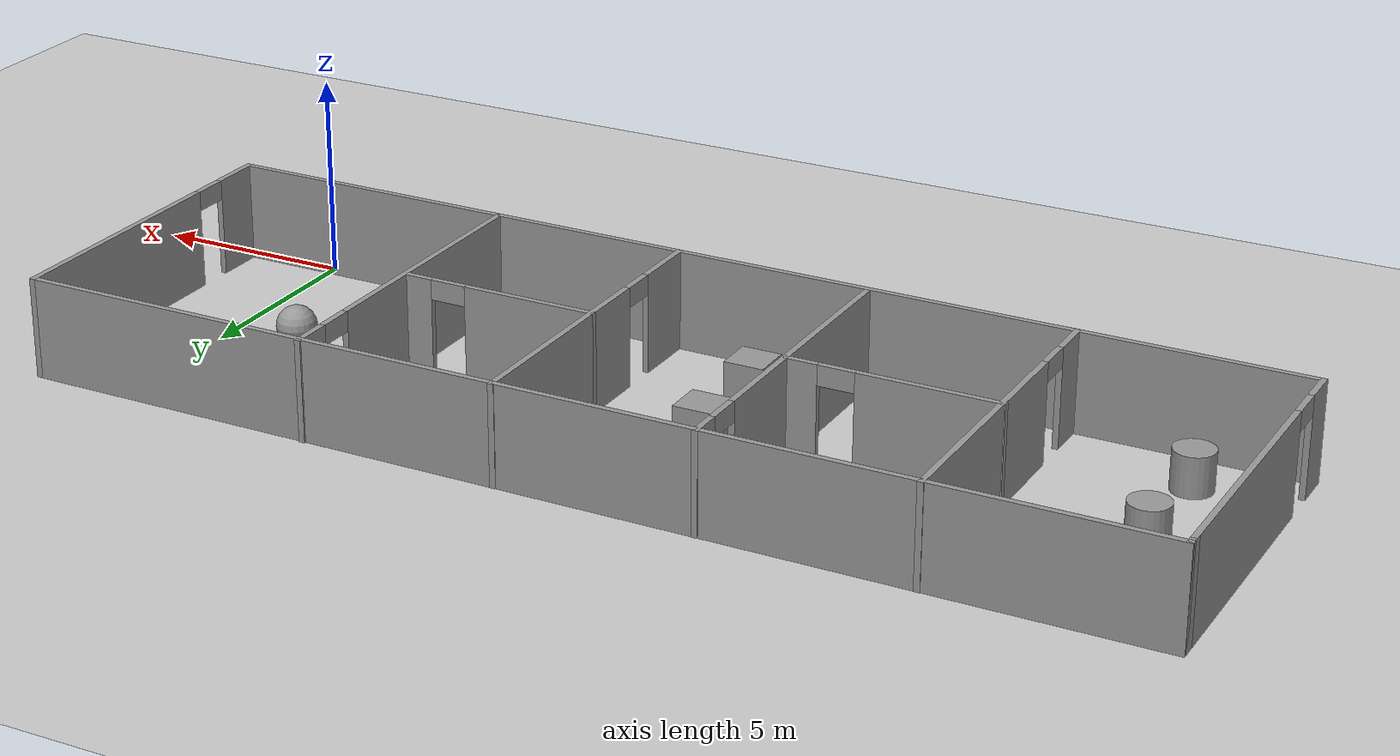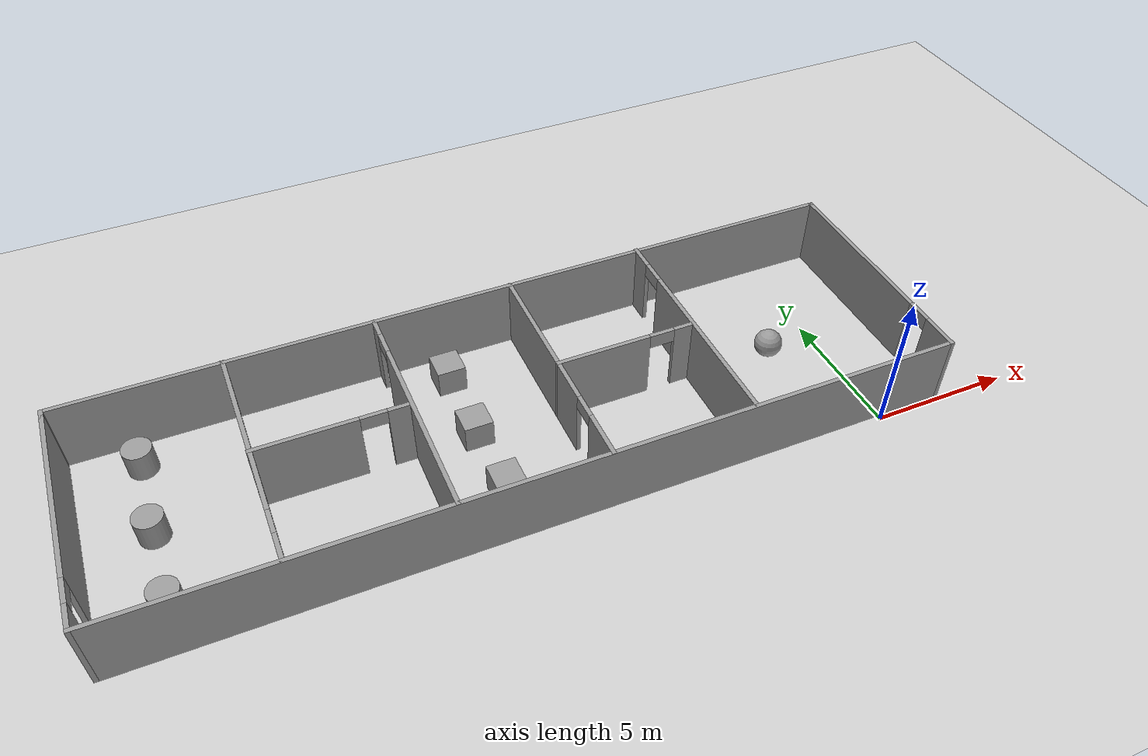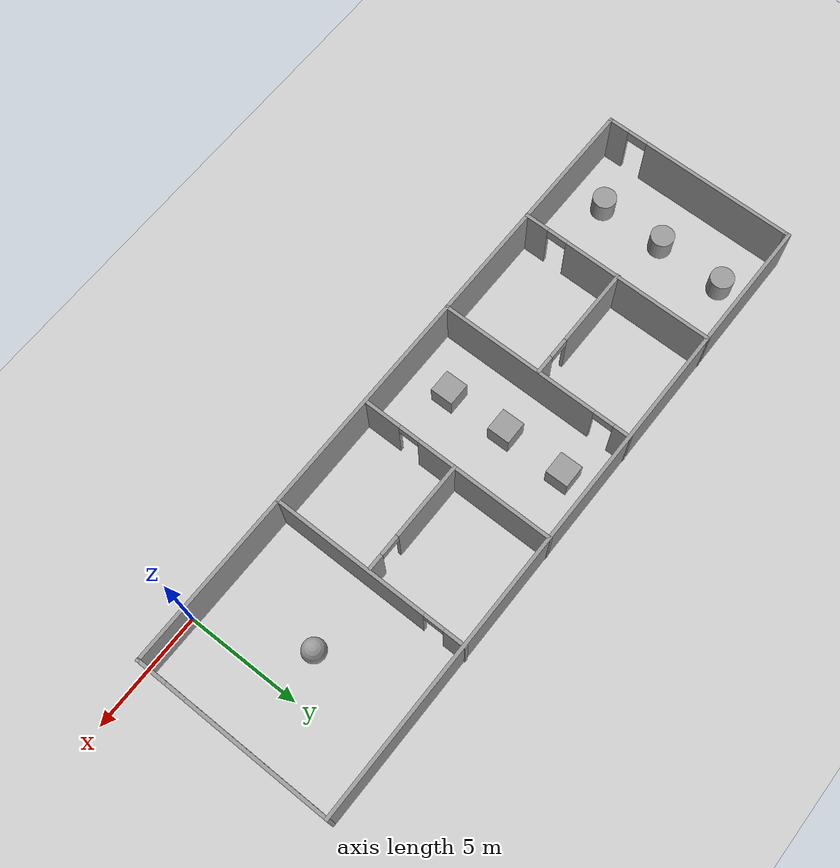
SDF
<sdf version="1.6">
 <world name="default">
  <light name="sun" type="directional">
   <pose>0 0 10 0 -0 0</pose>
   <diffuse>0.8 0.8 0.8 1</diffuse>
   <specular>0.1 0.1 0.1 1</specular>
   <attenuation>
    <range>1000</range>
    <constant>0.9</constant>
    <linear>0.01</linear>
    <quadratic>0.001</quadratic>
   </attenuation>
   <direction>-0.5 0.5 -1</direction>
  </light>
  <model name="ground_plane">
   <static>1</static>
   <link name="link">
    <collision name="collision">
     <geometry><plane><normal>0 0 1</normal><size>100 100</size></plane></geometry>
     <surface><friction><ode><mu>100</mu><mu2>50</mu2></ode></friction></surface>
    </collision>
    <visual name="visual">
     <cast_shadows>0</cast_shadows>
     <geometry><plane><normal>0 0 1</normal><size>100 100</size></plane></geometry>
     <material>
      <script><uri>file://media/materials/scripts/gazebo.material</uri><name>Gazebo/Grey</name></script>
     </material>
    </visual>
   </link>
  </model>
  <gravity>0 0 -9.8</gravity>
  <magnetic_field>6e-06 2.3e-05 -4.2e-05</magnetic_field>
  <atmosphere type="adiabatic"/>
  <physics name="default_physics" default="0" type="ode">
   <max_step_size>0.001</max_step_size>
   <real_time_factor>1</real_time_factor>
   <real_time_update_rate>1000</real_time_update_rate>
  </physics>
  <scene><ambient>0.4 0.4 0.4 1</ambient><background>0.7 0.7 0.7 1</background><shadows>1</shadows></scene>
  <spherical_coordinates>
   <surface_model>EARTH_WGS84</surface_model>
   <latitude_deg>0</latitude_deg>
   <longitude_deg>0</longitude_deg>
   <elevation>0</elevation>
   <heading_deg>0</heading_deg>
  </spherical_coordinates>
  <model name="house1">
   <pose>-11.6487 4.61276 0 0 0 -0.006803</pose>
   <link name="Wall_14">
    <pose>-3.30352 -0.005299 0 0 0 -1.5708</pose>
    <visual name="Wall_14_Visual_0">
     <pose>-3.97729 0 1.25 0 -0 0</pose>
     <geometry><box><size>0.795409 0.15 2.5</size></box></geometry>
     <material>
      <script><uri>file://media/materials/scripts/gazebo.material</uri><name>Gazebo/Grey</name></script>
      <ambient>1 1 1 1</ambient>
     </material>
    </visual>
    <collision name="Wall_14_Collision_0">
     <geometry><box><size>0.795409 0.15 2.5</size></box></geometry>
     <pose>-3.97729 0 1.25 0 -0 0</pose>
    </collision>
    <visual name="Wall_14_Visual_1">
     <pose>0.847705 0 1.25 0 -0 0</pose>
     <geometry><box><size>7.05459 0.15 2.5</size></box></geometry>
     <material>
      <script><uri>file://media/materials/scripts/gazebo.material</uri><name>Gazebo/Grey</name></script>
      <ambient>1 1 1 1</ambient>
     </material>
    </visual>
    <collision name="Wall_14_Collision_1">
     <geometry><box><size>7.05459 0.15 2.5</size></box></geometry>
     <pose>0.847705 0 1.25 0 -0 0</pose>
    </collision>
    <visual name="Wall_14_Visual_2">
     <pose>-3.12959 0 2.25 0 -0 0</pose>
     <geometry><box><size>0.9 0.15 0.5</size></box></geometry>
     <material>
      <script><uri>file://media/materials/scripts/gazebo.material</uri><name>Gazebo/Grey</name></script>
      <ambient>1 1 1 1</ambient>
     </material>
    </visual>
    <collision name="Wall_14_Collision_2">
     <geometry><box><size>0.9 0.15 0.5</size></box></geometry>
     <pose>-3.12959 0 2.25 0 -0 0</pose>
    </collision>
   </link>
   <link name="Wall_16">
    <pose>1.64412 -0.005299 0 0 0 -1.5708</pose>
    <visual name="Wall_16_Visual_0">
     <pose>-1.31728 0 1.25 0 -0 0</pose>
     <geometry><box><size>6.11545 0.15 2.5</size></box></geometry>
     <material>
      <script><uri>file://media/materials/scripts/gazebo.material</uri><name>Gazebo/Grey</name></script>
      <ambient>1 1 1 1</ambient>
     </material>
    </visual>
    <collision name="Wall_16_Collision_0">
     <geometry><box><size>6.11545 0.15 2.5</size></box></geometry>
     <pose>-1.31728 0 1.25 0 -0 0</pose>
    </collision>
    <visual name="Wall_16_Visual_1">
     <pose>3.50772 0 1.25 0 -0 0</pose>
     <geometry><box><size>1.73455 0.15 2.5</size></box></geometry>
     <material>
      <script><uri>file://media/materials/scripts/gazebo.material</uri><name>Gazebo/Grey</name></script>
      <ambient>1 1 1 1</ambient>
     </material>
    </visual>
    <collision name="Wall_16_Collision_1">
     <geometry><box><size>1.73455 0.15 2.5</size></box></geometry>
     <pose>3.50772 0 1.25 0 -0 0</pose>
    </collision>
    <visual name="Wall_16_Visual_2">
     <pose>2.19045 0 2.25 0 -0 0</pose>
     <geometry><box><size>0.9 0.15 0.5</size></box></geometry>
     <material>
      <script><uri>file://media/materials/scripts/gazebo.material</uri><name>Gazebo/Grey</name></script>
      <ambient>1 1 1 1</ambient>
     </material>
    </visual>
    <collision name="Wall_16_Collision_2">
     <geometry><box><size>0.9 0.15 0.5</size></box></geometry>
     <pose>2.19045 0 2.25 0 -0 0</pose>
    </collision>
   </link>
   <link name="Wall_2">
    <pose>-14.05 -0.146301 0 0 0 -1.5708</pose>
    <visual name="Wall_2_Visual_0">
     <pose>-0.939574 0 1.25 0 -0 0</pose>
     <geometry><box><size>6.62085 0.15 2.5</size></box></geometry>
     <material>
      <script><uri>file://media/materials/scripts/gazebo.material</uri><name>Gazebo/Grey</name></script>
      <ambient>1 1 1 1</ambient>
     </material>
    </visual>
    <collision name="Wall_2_Collision_0">
     <geometry><box><size>6.62085 0.15 2.5</size></box></geometry>
     <pose>-0.939574 0 1.25 0 -0 0</pose>
    </collision>
    <visual name="Wall_2_Visual_1">
     <pose>3.76043 0 1.25 0 -0 0</pose>
     <geometry><box><size>0.979148 0.15 2.5</size></box></geometry>
     <material>
      <script><uri>file://media/materials/scripts/gazebo.material</uri><name>Gazebo/Grey</name></script>
      <ambient>1 1 1 1</ambient>
     </material>
    </visual>
    <collision name="Wall_2_Collision_1">
     <geometry><box><size>0.979148 0.15 2.5</size></box></geometry>
     <pose>3.76043 0 1.25 0 -0 0</pose>
    </collision>
    <visual name="Wall_2_Visual_2">
     <pose>2.82085 0 2.25 0 -0 0</pose>
     <geometry><box><size>0.9 0.15 0.5</size></box></geometry>
     <material>
      <script><uri>file://media/materials/scripts/gazebo.material</uri><name>Gazebo/Grey</name></script>
      <ambient>1 1 1 1</ambient>
     </material>
    </visual>
    <collision name="Wall_2_Collision_2">
     <geometry><box><size>0.9 0.15 0.5</size></box></geometry>
     <pose>2.82085 0 2.25 0 -0 0</pose>
    </collision>
   </link>
   <link name="Wall_20">
    <pose>6.61835 0.021301 0 0 0 -1.5708</pose>
    <visual name="Wall_20_Visual_0">
     <pose>-3.87089 0 1.25 0 -0 0</pose>
     <geometry><box><size>1.00821 0.15 2.5</size></box></geometry>
     <material>
      <script><uri>file://media/materials/scripts/gazebo.material</uri><name>Gazebo/Grey</name></script>
      <ambient>1 1 1 1</ambient>
     </material>
    </visual>
    <collision name="Wall_20_Collision_0">
     <geometry><box><size>1.00821 0.15 2.5</size></box></geometry>
     <pose>-3.87089 0 1.25 0 -0 0</pose>
    </collision>
    <visual name="Wall_20_Visual_1">
     <pose>0.954105 0 1.25 0 -0 0</pose>
     <geometry><box><size>6.84179 0.15 2.5</size></box></geometry>
     <material>
      <script><uri>file://media/materials/scripts/gazebo.material</uri><name>Gazebo/Grey</name></script>
      <ambient>1 1 1 1</ambient>
     </material>
    </visual>
    <collision name="Wall_20_Collision_1">
     <geometry><box><size>6.84179 0.15 2.5</size></box></geometry>
     <pose>0.954105 0 1.25 0 -0 0</pose>
    </collision>
    <visual name="Wall_20_Visual_2">
     <pose>-2.91679 0 2.25 0 -0 0</pose>
     <geometry><box><size>0.9 0.15 0.5</size></box></geometry>
     <material>
      <script><uri>file://media/materials/scripts/gazebo.material</uri><name>Gazebo/Grey</name></script>
      <ambient>1 1 1 1</ambient>
     </material>
    </visual>
    <collision name="Wall_20_Collision_2">
     <geometry><box><size>0.9 0.15 0.5</size></box></geometry>
     <pose>-2.91679 0 2.25 0 -0 0</pose>
    </collision>
   </link>
   <link name="Wall_22">
    <pose>-5.88736 0.065269 0 0 -0 0</pose>
    <visual name="Wall_22_Visual_0">
     <pose>-0.870685 0 1.25 0 -0 0</pose>
     <geometry><box><size>3.50863 0.15 2.5</size></box></geometry>
     <material>
      <script><uri>file://media/materials/scripts/gazebo.material</uri><name>Gazebo/Grey</name></script>
      <ambient>1 1 1 1</ambient>
     </material>
    </visual>
    <collision name="Wall_22_Collision_0">
     <geometry><box><size>3.50863 0.15 2.5</size></box></geometry>
     <pose>-0.870685 0 1.25 0 -0 0</pose>
    </collision>
    <visual name="Wall_22_Visual_1">
     <pose>2.20431 0 1.25 0 -0 0</pose>
     <geometry><box><size>0.841371 0.15 2.5</size></box></geometry>
     <material>
      <script><uri>file://media/materials/scripts/gazebo.material</uri><name>Gazebo/Grey</name></script>
      <ambient>1 1 1 1</ambient>
     </material>
    </visual>
    <collision name="Wall_22_Collision_1">
     <geometry><box><size>0.841371 0.15 2.5</size></box></geometry>
     <pose>2.20431 0 1.25 0 -0 0</pose>
    </collision>
    <visual name="Wall_22_Visual_2">
     <pose>1.33363 0 2.25 0 -0 0</pose>
     <geometry><box><size>0.9 0.15 0.5</size></box></geometry>
     <material>
      <script><uri>file://media/materials/scripts/gazebo.material</uri><name>Gazebo/Grey</name></script>
      <ambient>1 1 1 1</ambient>
     </material>
    </visual>
    <collision name="Wall_22_Collision_2">
     <geometry><box><size>0.9 0.15 0.5</size></box></geometry>
     <pose>1.33363 0 2.25 0 -0 0</pose>
    </collision>
   </link>
   <link name="Wall_24">
    <pose>4.06912 -0.067732 0 0 -0 0</pose>
    <visual name="Wall_24_Visual_0">
     <pose>-0.798886 0 1.25 0 -0 0</pose>
     <geometry><box><size>3.40223 0.15 2.5</size></box></geometry>
     <material>
      <script><uri>file://media/materials/scripts/gazebo.material</uri><name>Gazebo/Grey</name></script>
      <ambient>1 1 1 1</ambient>
     </material>
    </visual>
    <collision name="Wall_24_Collision_0">
     <geometry><box><size>3.40223 0.15 2.5</size></box></geometry>
     <pose>-0.798886 0 1.25 0 -0 0</pose>
    </collision>
    <visual name="Wall_24_Visual_1">
     <pose>2.15111 0 1.25 0 -0 0</pose>
     <geometry><box><size>0.697772 0.15 2.5</size></box></geometry>
     <material>
      <script><uri>file://media/materials/scripts/gazebo.material</uri><name>Gazebo/Grey</name></script>
      <ambient>1 1 1 1</ambient>
     </material>
    </visual>
    <collision name="Wall_24_Collision_1">
     <geometry><box><size>0.697772 0.15 2.5</size></box></geometry>
     <pose>2.15111 0 1.25 0 -0 0</pose>
    </collision>
    <visual name="Wall_24_Visual_2">
     <pose>1.35223 0 2.25 0 -0 0</pose>
     <geometry><box><size>0.9 0.15 0.5</size></box></geometry>
     <material>
      <script><uri>file://media/materials/scripts/gazebo.material</uri><name>Gazebo/Grey</name></script>
      <ambient>1 1 1 1</ambient>
     </material>
    </visual>
    <collision name="Wall_24_Collision_2">
     <geometry><box><size>0.9 0.15 0.5</size></box></geometry>
     <pose>1.35223 0 2.25 0 -0 0</pose>
    </collision>
   </link>
   <link name="Wall_3">
    <collision name="Wall_3_Collision">
     <geometry><box><size>28.25 0.15 2.5</size></box></geometry>
     <pose>0 0 1.25 0 -0 0</pose>
    </collision>
    <visual name="Wall_3_Visual">
     <pose>0 0 1.25 0 -0 0</pose>
     <geometry><box><size>28.25 0.15 2.5</size></box></geometry>
     <material>
      <script><uri>file://media/materials/scripts/gazebo.material</uri><name>Gazebo/Grey</name></script>
      <ambient>1 1 1 1</ambient>
     </material>
    </visual>
    <pose>0 -4.3213 0 0 -0 0</pose>
   </link>
   <link name="Wall_4">
    <pose>14.05 -0.021301 0 0 -0 1.5708</pose>
    <visual name="Wall_4_Visual_0">
     <pose>-3.68593 0 1.25 0 -0 0</pose>
     <geometry><box><size>1.37815 0.15 2.5</size></box></geometry>
     <material>
      <script><uri>file://media/materials/scripts/gazebo.material</uri><name>Gazebo/Grey</name></script>
      <ambient>1 1 1 1</ambient>
     </material>
    </visual>
    <collision name="Wall_4_Collision_0">
     <geometry><box><size>1.37815 0.15 2.5</size></box></geometry>
     <pose>-3.68593 0 1.25 0 -0 0</pose>
    </collision>
    <visual name="Wall_4_Visual_1">
     <pose>1.13908 0 1.25 0 -0 0</pose>
     <geometry><box><size>6.47185 0.15 2.5</size></box></geometry>
     <material>
      <script><uri>file://media/materials/scripts/gazebo.material</uri><name>Gazebo/Grey</name></script>
      <ambient>1 1 1 1</ambient>
     </material>
    </visual>
    <collision name="Wall_4_Collision_1">
     <geometry><box><size>6.47185 0.15 2.5</size></box></geometry>
     <pose>1.13908 0 1.25 0 -0 0</pose>
    </collision>
    <visual name="Wall_4_Visual_2">
     <pose>-2.54685 0 2.25 0 -0 0</pose>
     <geometry><box><size>0.9 0.15 0.5</size></box></geometry>
     <material>
      <script><uri>file://media/materials/scripts/gazebo.material</uri><name>Gazebo/Grey</name></script>
      <ambient>1 1 1 1</ambient>
     </material>
    </visual>
    <collision name="Wall_4_Collision_2">
     <geometry><box><size>0.9 0.15 0.5</size></box></geometry>
     <pose>-2.54685 0 2.25 0 -0 0</pose>
    </collision>
   </link>
   <link name="Wall_5">
    <collision name="Wall_5_Collision">
     <geometry><box><size>28.25 0.15 2.5</size></box></geometry>
     <pose>0 0 1.25 0 -0 0</pose>
    </collision>
    <visual name="Wall_5_Visual">
     <pose>0 0 1.25 0 -0 0</pose>
     <geometry><box><size>28.25 0.15 2.5</size></box></geometry>
     <material>
      <script><uri>file://media/materials/scripts/gazebo.material</uri><name>Gazebo/Grey</name></script>
      <ambient>1 1 1 1</ambient>
     </material>
    </visual>
    <pose>0 4.2787 0 0 -0 3.14159</pose>
   </link>
   <link name="Wall_6">
    <collision name="Wall_6_Collision">
     <geometry><box><size>0.4 0.15 2.5</size></box></geometry>
     <pose>0 0 1.25 0 -0 0</pose>
    </collision>
    <visual name="Wall_6_Visual">
     <pose>0 0 1.25 0 -0 0</pose>
     <geometry><box><size>0.4 0.15 2.5</size></box></geometry>
     <material>
      <script><uri>file://media/materials/scripts/gazebo.material</uri><name>Gazebo/Grey</name></script>
      <ambient>1 1 1 1</ambient>
     </material>
    </visual>
    <pose>-14.05 4.1537 0 0 0 -1.5708</pose>
   </link>
   <link name="Wall_8">
    <pose>-8.41076 -0.005299 0 0 0 -1.5708</pose>
    <visual name="Wall_8_Visual_0">
     <pose>-0.998073 0 1.25 0 -0 0</pose>
     <geometry><box><size>6.75385 0.15 2.5</size></box></geometry>
     <material>
      <script><uri>file://media/materials/scripts/gazebo.material</uri><name>Gazebo/Grey</name></script>
      <ambient>1 1 1 1</ambient>
     </material>
    </visual>
    <collision name="Wall_8_Collision_0">
     <geometry><box><size>6.75385 0.15 2.5</size></box></geometry>
     <pose>-0.998073 0 1.25 0 -0 0</pose>
    </collision>
    <visual name="Wall_8_Visual_1">
     <pose>3.82693 0 1.25 0 -0 0</pose>
     <geometry><box><size>1.09615 0.15 2.5</size></box></geometry>
     <material>
      <script><uri>file://media/materials/scripts/gazebo.material</uri><name>Gazebo/Grey</name></script>
      <ambient>1 1 1 1</ambient>
     </material>
    </visual>
    <collision name="Wall_8_Collision_1">
     <geometry><box><size>1.09615 0.15 2.5</size></box></geometry>
     <pose>3.82693 0 1.25 0 -0 0</pose>
    </collision>
    <visual name="Wall_8_Visual_2">
     <pose>2.82885 0 2.25 0 -0 0</pose>
     <geometry><box><size>0.9 0.15 0.5</size></box></geometry>
     <material>
      <script><uri>file://media/materials/scripts/gazebo.material</uri><name>Gazebo/Grey</name></script>
      <ambient>1 1 1 1</ambient>
     </material>
    </visual>
    <collision name="Wall_8_Collision_2">
     <geometry><box><size>0.9 0.15 0.5</size></box></geometry>
     <pose>2.82885 0 2.25 0 -0 0</pose>
    </collision>
   </link>
   <static>1</static>
  </model>
  <model name="unit_sphere_0">
   <pose>-1.83207 4.40979 0.5 0 -0 0</pose>
   <link name="link">
    <inertial>
     <mass>1</mass>
     <inertia><ixx>0.1</ixx><ixy>0</ixy><ixz>0</ixz><iyy>0.1</iyy><iyz>0</iyz><izz>0.1</izz></inertia>
    </inertial>
    <collision name="collision"><geometry><sphere><radius>0.5</radius></sphere></geometry></collision>
    <visual name="visual">
     <geometry><sphere><radius>0.5</radius></sphere></geometry>
     <material>
      <script><name>Gazebo/Grey</name><uri>file://media/materials/scripts/gazebo.material</uri></script>
     </material>
    </visual>
   </link>
  </model>
  <model name="unit_box_0">
   <pose>-12.8757 2.04913 0.5 0 -0 0</pose>
   <link name="link">
    <inertial>
     <mass>1</mass>
     <inertia>
      <ixx>0.166667</ixx>
      <ixy>0</ixy>
      <ixz>0</ixz>
      <iyy>0.166667</iyy>
      <iyz>0</iyz>
      <izz>0.166667</izz>
     </inertia>
    </inertial>
    <collision name="collision"><geometry><box><size>1 1 1</size></box></geometry></collision>
    <visual name="visual">
     <geometry><box><size>1 1 1</size></box></geometry>
     <material>
      <script><name>Gazebo/Grey</name><uri>file://media/materials/scripts/gazebo.material</uri></script>
     </material>
    </visual>
   </link>
  </model>
  <model name="unit_box_1">
   <pose>-12.9477 4.74769 0.5 0 -0 0</pose>
   <link name="link">
    <inertial>
     <mass>1</mass>
     <inertia>
      <ixx>0.166667</ixx>
      <ixy>0</ixy>
      <ixz>0</ixz>
      <iyy>0.166667</iyy>
      <iyz>0</iyz>
      <izz>0.166667</izz>
     </inertia>
    </inertial>
    <collision name="collision"><geometry><box><size>1 1 1</size></box></geometry></collision>
    <visual name="visual">
     <geometry><box><size>1 1 1</size></box></geometry>
     <material>
      <script><name>Gazebo/Grey</name><uri>file://media/materials/scripts/gazebo.material</uri></script>
     </material>
    </visual>
   </link>
  </model>
  <model name="unit_cylinder_0">
   <pose>-23.4562 1.90932 0.5 0 -0 0</pose>
   <link name="link">
    <inertial>
     <mass>1</mass>
     <inertia><ixx>0.145833</ixx><ixy>0</ixy><ixz>0</ixz><iyy>0.145833</iyy><iyz>0</iyz><izz>0.125</izz></inertia>
    </inertial>
    <collision name="collision">
     <geometry><cylinder><radius>0.5</radius><length>1</length></cylinder></geometry>
    </collision>
    <visual name="visual">
     <geometry><cylinder><radius>0.5</radius><length>1</length></cylinder></geometry>
     <material>
      <script><name>Gazebo/Grey</name><uri>file://media/materials/scripts/gazebo.material</uri></script>
     </material>
    </visual>
   </link>
  </model>
  <model name="unit_cylinder_1">
   <pose>-23.4539 4.79161 0.5 0 -0 0</pose>
   <link name="link">
    <inertial>
     <mass>1</mass>
     <inertia><ixx>0.145833</ixx><ixy>0</ixy><ixz>0</ixz><iyy>0.145833</iyy><iyz>0</iyz><izz>0.125</izz></inertia>
    </inertial>
    <collision name="collision">
     <geometry><cylinder><radius>0.5</radius><length>1</length></cylinder></geometry>
    </collision>
    <visual name="visual">
     <geometry><cylinder><radius>0.5</radius><length>1</length></cylinder></geometry>
     <material>
      <script><name>Gazebo/Grey</name><uri>file://media/materials/scripts/gazebo.material</uri></script>
     </material>
    </visual>
   </link>
  </model>
  <model name="unit_box_2">
   <pose>-12.8999 7.55122 0.5 0 -0 0</pose>
   <link name="link">
    <inertial>
     <mass>1</mass>
     <inertia>
      <ixx>0.166667</ixx>
      <ixy>0</ixy>
      <ixz>0</ixz>
      <iyy>0.166667</iyy>
      <iyz>0</iyz>
      <izz>0.166667</izz>
     </inertia>
    </inertial>
    <collision name="collision"><geometry><box><size>1 1 1</size></box></geometry></collision>
    <visual name="visual">
     <geometry><box><size>1 1 1</size></box></geometry>
     <material>
      <script><name>Gazebo/Grey</name><uri>file://media/materials/scripts/gazebo.material</uri></script>
     </material>
    </visual>
   </link>
  </model>
  <model name="unit_cylinder_2">
   <pose>-23.3538 7.76615 0.5 0 -0 0</pose>
   <link name="link">
    <inertial>
     <mass>1</mass>
     <inertia><ixx>0.145833</ixx><ixy>0</ixy><ixz>0</ixz><iyy>0.145833</iyy><iyz>0</iyz><izz>0.125</izz></inertia>
    </inertial>
    <collision name="collision">
     <geometry><cylinder><radius>0.5</radius><length>1</length></cylinder></geometry>
    </collision>
    <visual name="visual">
     <geometry><cylinder><radius>0.5</radius><length>1</length></cylinder></geometry>
     <material>
      <script><name>Gazebo/Grey</name><uri>file://media/materials/scripts/gazebo.material</uri></script>
     </material>
    </visual>
   </link>
  </model>
 </world>
</sdf>
